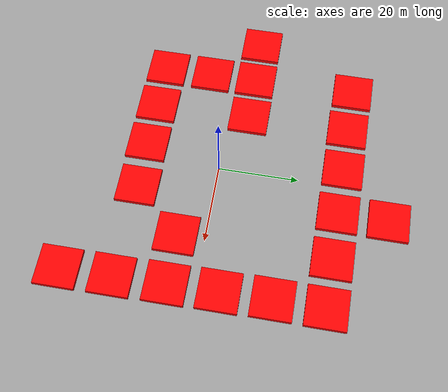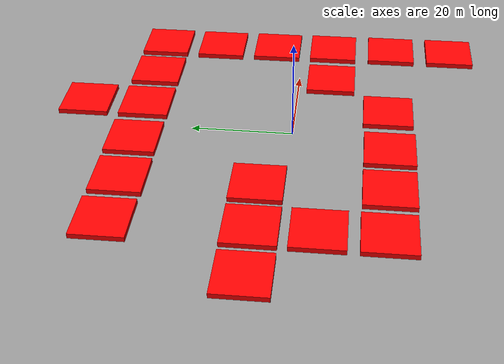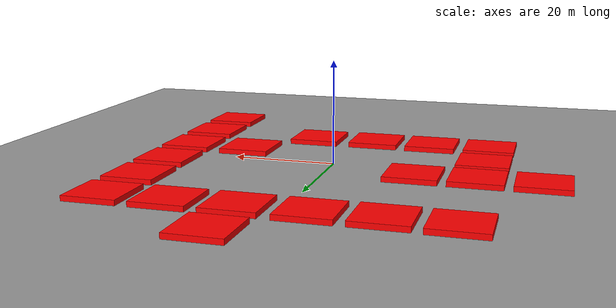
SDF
<sdf version="1.10">
 <world name="default">
  <gravity>0 0 -9.8000000000000007</gravity>
  <magnetic_field>5.5644999999999998e-06 2.2875799999999999e-05 -4.2388400000000002e-05</magnetic_field>
  <atmosphere type="adiabatic"/>
  <physics type="ode">
   <max_step_size>0.001</max_step_size>
   <real_time_factor>1</real_time_factor>
   <real_time_update_rate>1000</real_time_update_rate>
  </physics>
  <scene>
   <ambient>0.400000006 0.400000006 0.400000006 1</ambient>
   <background>0.699999988 0.699999988 0.699999988 1</background>
   <shadows>true</shadows>
  </scene>
  <model name="ground_plane">
   <static>true</static>
   <link name="link">
    <collision name="collision">
     <geometry><plane><normal>0 0 1</normal><size>100 100</size></plane></geometry>
     <surface><contact><collide_without_contact_bitmask>1</collide_without_contact_bitmask></contact></surface>
    </collision>
    <visual name="visual">
     <geometry><plane><normal>0 0 1</normal><size>100 100</size></plane></geometry>
     <material>
      <ambient>0.600000024 0.600000024 0.600000024 1</ambient>
      <diffuse>0.600000024 0.600000024 0.600000024 1</diffuse>
     </material>
    </visual>
    <inertial>
     <mass>1</mass>
     <inertia><ixx>1</ixx><ixy>0</ixy><ixz>0</ixz><iyy>1</iyy><iyz>0</iyz><izz>1</izz></inertia>
    </inertial>
   </link>
  </model>
  <model name="static_box_1">
   <static>true</static>
   <pose>31.917200088500977 30.705072402954102 0.5 0 0 0</pose>
   <link name="link">
    <collision name="collision"><geometry><box><size>10 10 1</size></box></geometry></collision>
    <visual name="visual">
     <geometry><box><size>10 10 1</size></box></geometry>
     <material><ambient>1 0 0 1</ambient></material>
    </visual>
    <inertial>
     <mass>1</mass>
     <inertia><ixx>1</ixx><ixy>0</ixy><ixz>0</ixz><iyy>1</iyy><iyz>0</iyz><izz>1</izz></inertia>
    </inertial>
   </link>
  </model>
  <model name="static_box_1_1">
   <static>true</static>
   <pose>31.851677371064991 18.202903004073534 0.5 0 0 0</pose>
   <link name="link">
    <collision name="collision"><geometry><box><size>10 10 1</size></box></geometry></collision>
    <visual name="visual">
     <geometry><box><size>10 10 1</size></box></geometry>
     <material><ambient>1 0 0 1</ambient></material>
    </visual>
    <inertial>
     <mass>1</mass>
     <inertia><ixx>1</ixx><ixy>0</ixy><ixz>0</ixz><iyy>1</iyy><iyz>0</iyz><izz>1</izz></inertia>
    </inertial>
   </link>
  </model>
  <model name="static_box_1_2">
   <static>true</static>
   <pose>19.754003937019881 30.66036357166622 0.5 0 0 0</pose>
   <link name="link">
    <collision name="collision"><geometry><box><size>10 10 1</size></box></geometry></collision>
    <visual name="visual">
     <geometry><box><size>10 10 1</size></box></geometry>
     <material><ambient>1 0 0 1</ambient></material>
    </visual>
    <inertial>
     <mass>1</mass>
     <inertia><ixx>1</ixx><ixy>0</ixy><ixz>0</ixz><iyy>1</iyy><iyz>0</iyz><izz>1</izz></inertia>
    </inertial>
   </link>
  </model>
  <model name="static_box_1_3">
   <static>true</static>
   <pose>7.5873327959069181 30.685607672087563 0.5 0 0 0</pose>
   <link name="link">
    <collision name="collision"><geometry><box><size>10 10 1</size></box></geometry></collision>
    <visual name="visual">
     <geometry><box><size>10 10 1</size></box></geometry>
     <material><ambient>1 0 0 1</ambient></material>
    </visual>
    <inertial>
     <mass>1</mass>
     <inertia><ixx>1</ixx><ixy>0</ixy><ixz>0</ixz><iyy>1</iyy><iyz>0</iyz><izz>1</izz></inertia>
    </inertial>
   </link>
  </model>
  <model name="static_box_1_4">
   <static>true</static>
   <pose>32.057090518846238 5.6791501682357826 0.5 0 0 0</pose>
   <link name="link">
    <collision name="collision"><geometry><box><size>10 10 1</size></box></geometry></collision>
    <visual name="visual">
     <geometry><box><size>10 10 1</size></box></geometry>
     <material><ambient>1 0 0 1</ambient></material>
    </visual>
    <inertial>
     <mass>1</mass>
     <inertia><ixx>1</ixx><ixy>0</ixy><ixz>0</ixz><iyy>1</iyy><iyz>0</iyz><izz>1</izz></inertia>
    </inertial>
   </link>
  </model>
  <model name="static_box_1_5">
   <static>true</static>
   <pose>32.254640644212927 -6.7793942227324777 0.5 0 0 0</pose>
   <link name="link">
    <collision name="collision"><geometry><box><size>10 10 1</size></box></geometry></collision>
    <visual name="visual">
     <geometry><box><size>10 10 1</size></box></geometry>
     <material><ambient>1 0 0 1</ambient></material>
    </visual>
    <inertial>
     <mass>1</mass>
     <inertia><ixx>1</ixx><ixy>0</ixy><ixz>0</ixz><iyy>1</iyy><iyz>0</iyz><izz>1</izz></inertia>
    </inertial>
   </link>
  </model>
  <model name="static_box_1_6">
   <static>true</static>
   <pose>32.474458369217572 -19.624594885512408 0.5 0 0 0</pose>
   <link name="link">
    <collision name="collision"><geometry><box><size>10 10 1</size></box></geometry></collision>
    <visual name="visual">
     <geometry><box><size>10 10 1</size></box></geometry>
     <material><ambient>1 0 0 1</ambient></material>
    </visual>
    <inertial>
     <mass>1</mass>
     <inertia><ixx>1</ixx><ixy>0</ixy><ixz>0</ixz><iyy>1</iyy><iyz>0</iyz><izz>1</izz></inertia>
    </inertial>
   </link>
  </model>
  <model name="static_box_1_7">
   <static>true</static>
   <pose>32.58485144898831 -32.449319431806664 0.5 0 0 0</pose>
   <link name="link">
    <collision name="collision"><geometry><box><size>10 10 1</size></box></geometry></collision>
    <visual name="visual">
     <geometry><box><size>10 10 1</size></box></geometry>
     <material><ambient>1 0 0 1</ambient></material>
    </visual>
    <inertial>
     <mass>1</mass>
     <inertia><ixx>1</ixx><ixy>0</ixy><ixz>0</ixz><iyy>1</iyy><iyz>0</iyz><izz>1</izz></inertia>
    </inertial>
   </link>
  </model>
  <model name="static_box_1_9">
   <static>true</static>
   <pose>-16.598446269399197 30.651135567085333 0.5 0 0 0</pose>
   <link name="link">
    <collision name="collision"><geometry><box><size>10 10 1</size></box></geometry></collision>
    <visual name="visual">
     <geometry><box><size>10 10 1</size></box></geometry>
     <material><ambient>1 0 0 1</ambient></material>
    </visual>
    <inertial>
     <mass>1</mass>
     <inertia><ixx>1</ixx><ixy>0</ixy><ixz>0</ixz><iyy>1</iyy><iyz>0</iyz><izz>1</izz></inertia>
    </inertial>
   </link>
  </model>
  <model name="static_box_1_10">
   <static>true</static>
   <pose>7.6752276417872416 42.999679438622778 0.5 0 0 0</pose>
   <link name="link">
    <collision name="collision"><geometry><box><size>10 10 1</size></box></geometry></collision>
    <visual name="visual">
     <geometry><box><size>10 10 1</size></box></geometry>
     <material><ambient>1 0 0 1</ambient></material>
    </visual>
    <inertial>
     <mass>1</mass>
     <inertia><ixx>1</ixx><ixy>0</ixy><ixz>0</ixz><iyy>1</iyy><iyz>0</iyz><izz>1</izz></inertia>
    </inertial>
   </link>
  </model>
  <model name="static_box_1_9_1">
   <static>true</static>
   <pose>-4.7021067152681635 30.746679797956123 0.5 0 0 0</pose>
   <link name="link">
    <collision name="collision"><geometry><box><size>10 10 1</size></box></geometry></collision>
    <visual name="visual">
     <geometry><box><size>10 10 1</size></box></geometry>
     <material><ambient>1 0 0 1</ambient></material>
    </visual>
    <inertial>
     <mass>1</mass>
     <inertia><ixx>1</ixx><ixy>0</ixy><ixz>0</ixz><iyy>1</iyy><iyz>0</iyz><izz>1</izz></inertia>
    </inertial>
   </link>
  </model>
  <model name="static_box_1_9_1_1">
   <static>true</static>
   <pose>19.542840192067729 -6.8490588650407709 0.5 0 0 0</pose>
   <link name="link">
    <collision name="collision"><geometry><box><size>10 10 1</size></box></geometry></collision>
    <visual name="visual">
     <geometry><box><size>10 10 1</size></box></geometry>
     <material><ambient>1 0 0 1</ambient></material>
    </visual>
    <inertial>
     <mass>1</mass>
     <inertia><ixx>1</ixx><ixy>0</ixy><ixz>0</ixz><iyy>1</iyy><iyz>0</iyz><izz>1</izz></inertia>
    </inertial>
   </link>
  </model>
  <model name="static_box_1_9_1_2">
   <static>true</static>
   <pose>8.2199110984802246 -18.813921578868978 0.5 0 0 0</pose>
   <link name="link">
    <collision name="collision"><geometry><box><size>10 10 1</size></box></geometry></collision>
    <visual name="visual">
     <geometry><box><size>10 10 1</size></box></geometry>
     <material><ambient>1 0 0 1</ambient></material>
    </visual>
    <inertial>
     <mass>1</mass>
     <inertia><ixx>1</ixx><ixy>0</ixy><ixz>0</ixz><iyy>1</iyy><iyz>0</iyz><izz>1</izz></inertia>
    </inertial>
   </link>
  </model>
  <model name="static_box_1_9_1_3">
   <static>true</static>
   <pose>-4.334569037561403 -19.068721956721639 0.5 0 0 0</pose>
   <link name="link">
    <collision name="collision"><geometry><box><size>10 10 1</size></box></geometry></collision>
    <visual name="visual">
     <geometry><box><size>10 10 1</size></box></geometry>
     <material><ambient>1 0 0 1</ambient></material>
    </visual>
    <inertial>
     <mass>1</mass>
     <inertia><ixx>1</ixx><ixy>0</ixy><ixz>0</ixz><iyy>1</iyy><iyz>0</iyz><izz>1</izz></inertia>
    </inertial>
   </link>
  </model>
  <model name="static_box_1_9_1_4">
   <static>true</static>
   <pose>-16.192619889946403 -18.973432380010465 0.5 0 0 0</pose>
   <link name="link">
    <collision name="collision"><geometry><box><size>10 10 1</size></box></geometry></collision>
    <visual name="visual">
     <geometry><box><size>10 10 1</size></box></geometry>
     <material><ambient>1 0 0 1</ambient></material>
    </visual>
    <inertial>
     <mass>1</mass>
     <inertia><ixx>1</ixx><ixy>0</ixy><ixz>0</ixz><iyy>1</iyy><iyz>0</iyz><izz>1</izz></inertia>
    </inertial>
   </link>
  </model>
  <model name="static_box_1_9_1_5">
   <static>true</static>
   <pose>-28.083150039522192 -18.818633635673542 0.5 0 0 0</pose>
   <link name="link">
    <collision name="collision"><geometry><box><size>10 10 1</size></box></geometry></collision>
    <visual name="visual">
     <geometry><box><size>10 10 1</size></box></geometry>
     <material><ambient>1 0 0 1</ambient></material>
    </visual>
    <inertial>
     <mass>1</mass>
     <inertia><ixx>1</ixx><ixy>0</ixy><ixz>0</ixz><iyy>1</iyy><iyz>0</iyz><izz>1</izz></inertia>
    </inertial>
   </link>
  </model>
  <model name="moving_box_1_9_1_6">
   <static>true</static>
   <pose>-28.073603331344664 -6.6752043157485677 0.5 0 0 0</pose>
   <link name="link">
    <collision name="collision"><geometry><box><size>10 10 1</size></box></geometry></collision>
    <visual name="visual">
     <geometry><box><size>10 10 1</size></box></geometry>
     <material><ambient>1 0 0 1</ambient></material>
    </visual>
    <inertial>
     <mass>1</mass>
     <inertia><ixx>1</ixx><ixy>0</ixy><ixz>0</ixz><iyy>1</iyy><iyz>0</iyz><izz>1</izz></inertia>
    </inertial>
   </link>
  </model>
  <model name="static_box_1_9_1_7">
   <static>true</static>
   <pose>-28.096097854164324 5.0521257501082646 0.5 0 0 0</pose>
   <link name="link">
    <collision name="collision"><geometry><box><size>10 10 1</size></box></geometry></collision>
    <visual name="visual">
     <geometry><box><size>10 10 1</size></box></geometry>
     <material><ambient>1 0 0 1</ambient></material>
    </visual>
    <inertial>
     <mass>1</mass>
     <inertia><ixx>1</ixx><ixy>0</ixy><ixz>0</ixz><iyy>1</iyy><iyz>0</iyz><izz>1</izz></inertia>
    </inertial>
   </link>
  </model>
  <model name="static_box_1_9_1_8">
   <static>true</static>
   <pose>-28.392490549830388 30.852012343208798 0.5 0 0 0</pose>
   <link name="link">
    <collision name="collision"><geometry><box><size>10 10 1</size></box></geometry></collision>
    <visual name="visual">
     <geometry><box><size>10 10 1</size></box></geometry>
     <material><ambient>1 0 0 1</ambient></material>
    </visual>
    <inertial>
     <mass>1</mass>
     <inertia><ixx>1</ixx><ixy>0</ixy><ixz>0</ixz><iyy>1</iyy><iyz>0</iyz><izz>1</izz></inertia>
    </inertial>
   </link>
  </model>
  <model name="static_box_1_9_1_7_1">
   <static>true</static>
   <pose>-39.662200294511187 4.9779415673474325 0.5 0 0 0</pose>
   <link name="link">
    <collision name="collision"><geometry><box><size>10 10 1</size></box></geometry></collision>
    <visual name="visual">
     <geometry><box><size>10 10 1</size></box></geometry>
     <material><ambient>1 0 0 1</ambient></material>
    </visual>
    <inertial>
     <mass>1</mass>
     <inertia><ixx>1</ixx><ixy>0</ixy><ixz>0</ixz><iyy>1</iyy><iyz>0</iyz><izz>1</izz></inertia>
    </inertial>
   </link>
  </model>
  <model name="static_box_1_9_1_7_2">
   <static>true</static>
   <pose>-16.51419849389027 5.1310974598267141 0.5 0 0 0</pose>
   <link name="link">
    <collision name="collision"><geometry><box><size>10 10 1</size></box></geometry></collision>
    <visual name="visual">
     <geometry><box><size>10 10 1</size></box></geometry>
     <material><ambient>1 0 0 1</ambient></material>
    </visual>
    <inertial>
     <mass>1</mass>
     <inertia><ixx>1</ixx><ixy>0</ixy><ixz>0</ixz><iyy>1</iyy><iyz>0</iyz><izz>1</izz></inertia>
    </inertial>
   </link>
  </model>
 </world>
</sdf>
